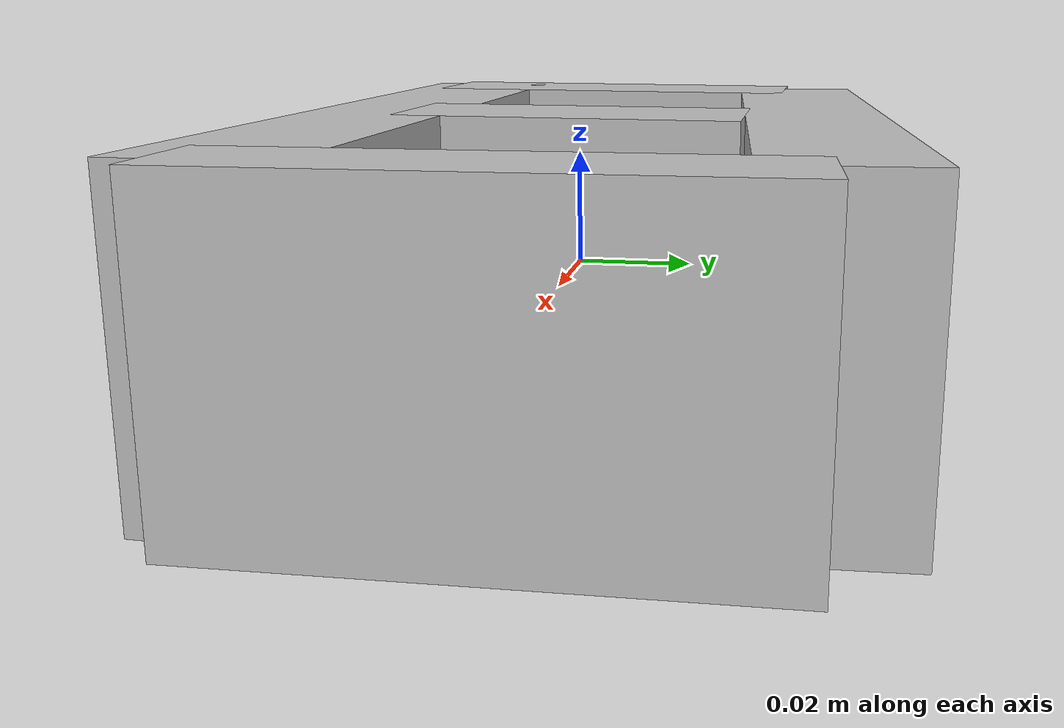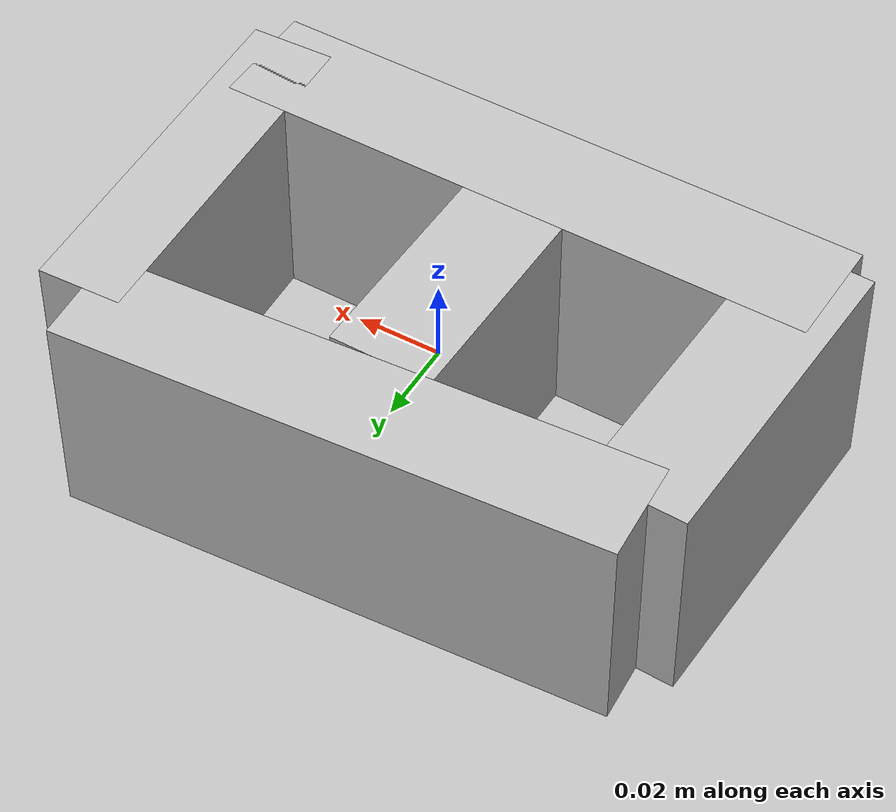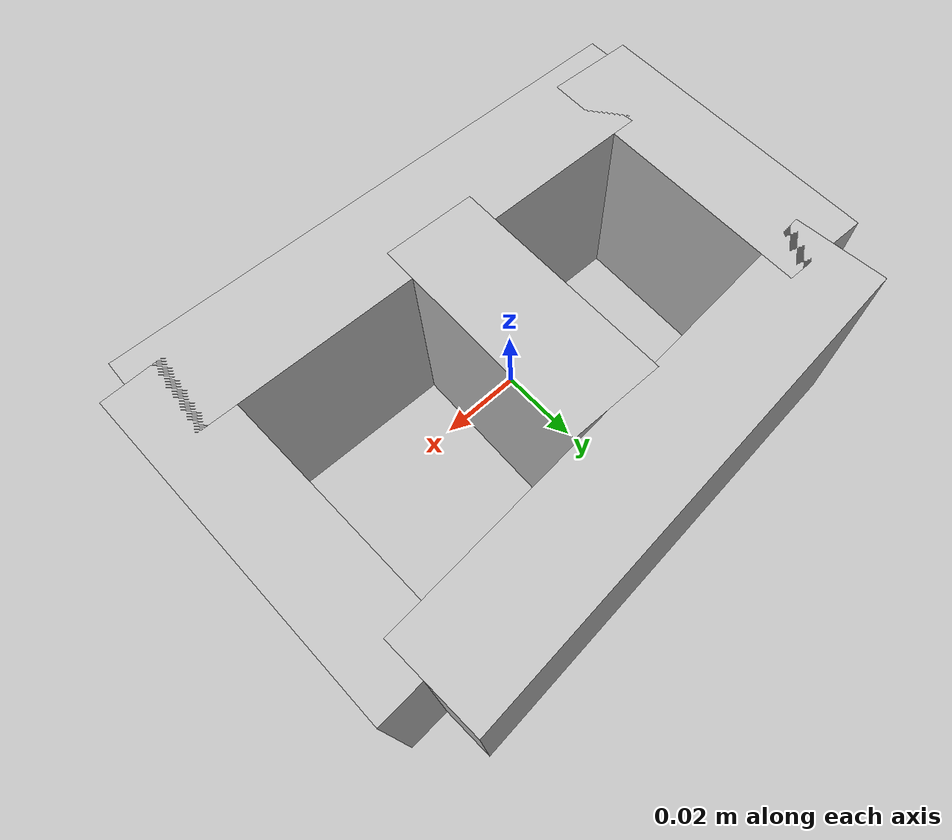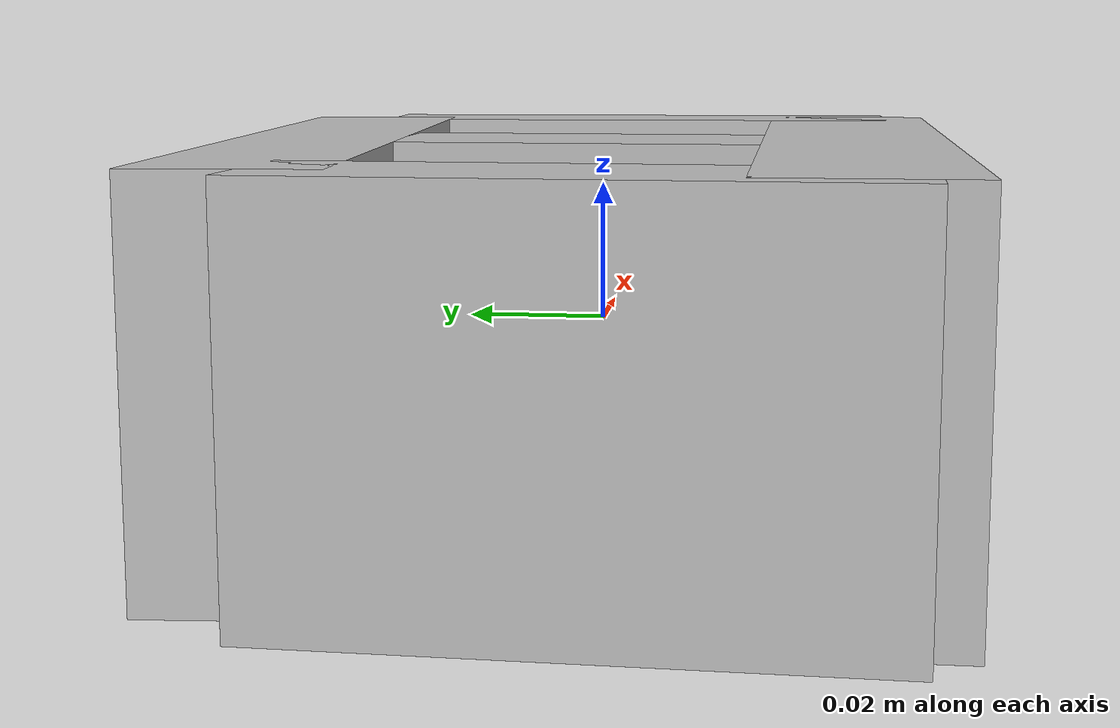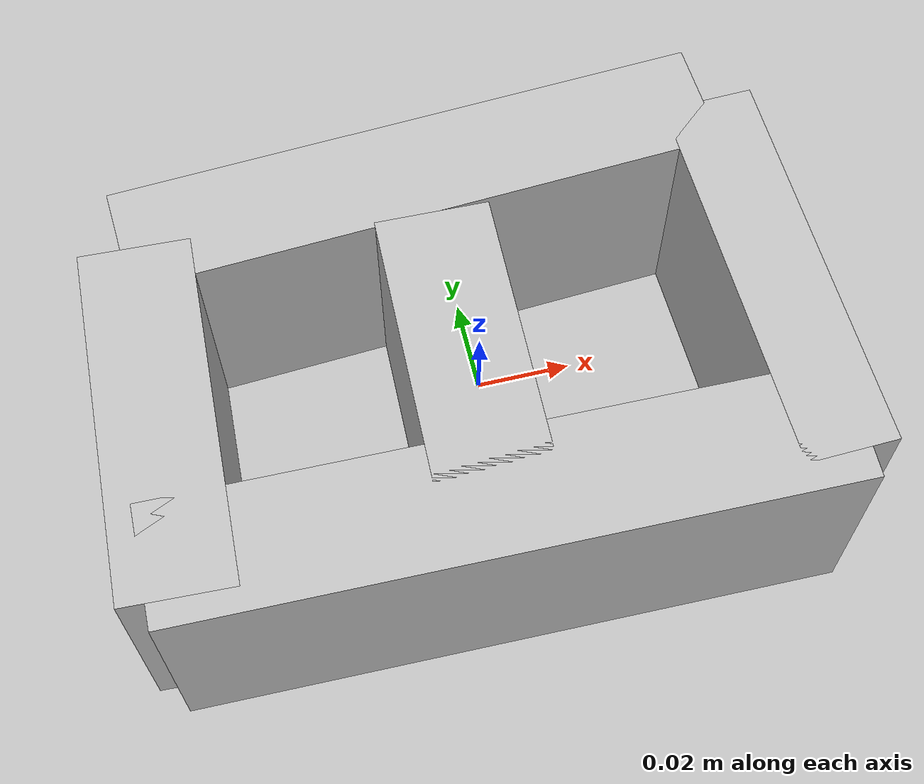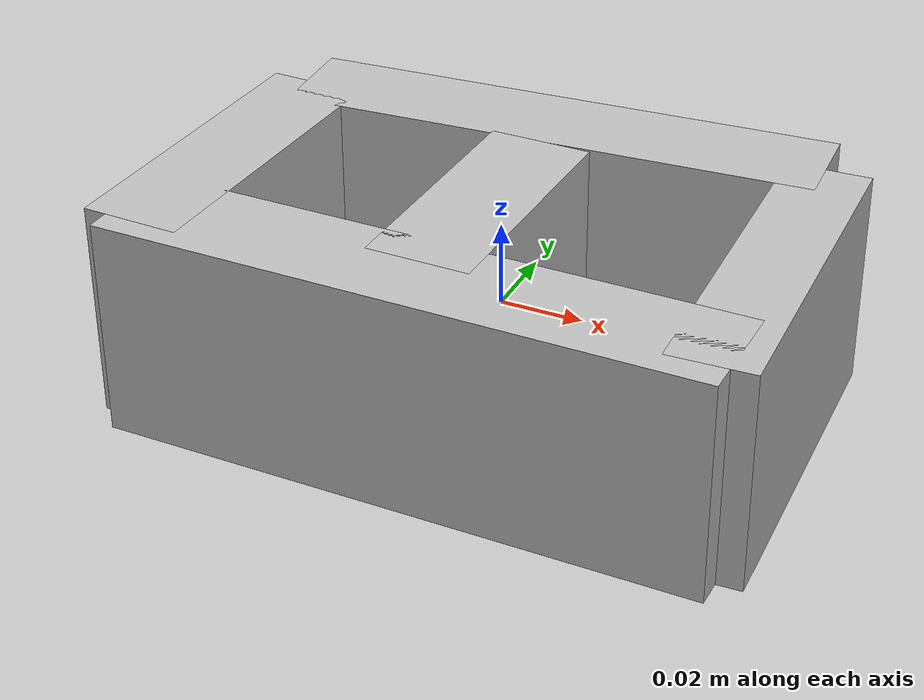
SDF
<?xml version="1.0"?>
<sdf version="1.7">
  <model name="B_shape_video">
    <link name="B_shape_video">
      <inertial>
        <pose>-0.003817 -0.001727 0.000360 0 0 0</pose>
        <mass>0.05</mass>
        <inertia>
          <ixx>6.76069115e-05</ixx>
          <iyy>0.000123463635</iyy>
          <izz>0.000167693399</izz>
          <ixy>-2.18263206e-06</ixy>
          <ixz>6.87079107e-08</ixz>
          <iyz>3.10937595e-08</iyz>
        </inertia>
      </inertial>
      <visual name="box_0">
        <pose>-0.067770 -0.003930 0.000360 0 0 -0.043520</pose>
        <geometry>
          <box><size>0.023820 0.078760 0.052950</size></box>
        </geometry>
        <material>
          <diffuse>0.75 0.75 0.75 1</diffuse>
        </material>
      </visual>
      <collision name="box_0_volume">
        <pose>-0.067770 -0.003930 0.000360 0 0 -0.043520</pose>
        <geometry>
          <box><size>0.023820 0.078760 0.052950</size></box>
        </geometry>
        <drake:proximity_properties>
          <drake:compliant_hydroelastic/>
          <drake:hydroelastic_modulus> 3.0e7 </drake:hydroelastic_modulus>
          <drake:mesh_resolution_hint> 0.02 </drake:mesh_resolution_hint>
          <drake:hunt_crossley_dissipation>10</drake:hunt_crossley_dissipation>
          <drake:mu_dynamic>0.3</drake:mu_dynamic>
        </drake:proximity_properties>
      </collision>
      <visual name="box_1">
        <pose>-0.003950 0.041270 0.000360 0 0 0.058250</pose>
        <geometry>
          <box><size>0.130470 0.024400 0.052950</size></box>
        </geometry>
        <material>
          <diffuse>0.75 0.75 0.75 1</diffuse>
        </material>
      </visual>
      <collision name="box_1_volume">
        <pose>-0.003950 0.041270 0.000360 0 0 0.058250</pose>
        <geometry>
          <box><size>0.130470 0.024400 0.052950</size></box>
        </geometry>
        <drake:proximity_properties>
          <drake:compliant_hydroelastic/>
          <drake:hydroelastic_modulus> 3.0e7 </drake:hydroelastic_modulus>
          <drake:mesh_resolution_hint> 0.02 </drake:mesh_resolution_hint>
          <drake:hunt_crossley_dissipation>10</drake:hunt_crossley_dissipation>
          <drake:mu_dynamic>0.3</drake:mu_dynamic>
        </drake:proximity_properties>
      </collision>
      <visual name="box_2">
        <pose>-0.004070 -0.001730 0.000360 0 0 -0.023730</pose>
        <geometry>
          <box><size>0.024830 0.061950 0.052950</size></box>
        </geometry>
        <material>
          <diffuse>0.75 0.75 0.75 1</diffuse>
        </material>
      </visual>
      <collision name="box_2_volume">
        <pose>-0.004070 -0.001730 0.000360 0 0 -0.023730</pose>
        <geometry>
          <box><size>0.024830 0.061950 0.052950</size></box>
        </geometry>
        <drake:proximity_properties>
          <drake:compliant_hydroelastic/>
          <drake:hydroelastic_modulus> 3.0e7 </drake:hydroelastic_modulus>
          <drake:mesh_resolution_hint> 0.02 </drake:mesh_resolution_hint>
          <drake:hunt_crossley_dissipation>10</drake:hunt_crossley_dissipation>
          <drake:mu_dynamic>0.3</drake:mu_dynamic>
        </drake:proximity_properties>
      </collision>
      <visual name="box_3">
        <pose>-0.003250 -0.036740 0.000360 0 0 1.553180</pose>
        <geometry>
          <box><size>0.026590 0.144660 0.052950</size></box>
        </geometry>
        <material>
          <diffuse>0.75 0.75 0.75 1</diffuse>
        </material>
      </visual>
      <collision name="box_3_volume">
        <pose>-0.003250 -0.036740 0.000360 0 0 1.553180</pose>
        <geometry>
          <box><size>0.026590 0.144660 0.052950</size></box>
        </geometry>
        <drake:proximity_properties>
          <drake:compliant_hydroelastic/>
          <drake:hydroelastic_modulus> 3.0e7 </drake:hydroelastic_modulus>
          <drake:mesh_resolution_hint> 0.02 </drake:mesh_resolution_hint>
          <drake:hunt_crossley_dissipation>10</drake:hunt_crossley_dissipation>
          <drake:mu_dynamic>0.3</drake:mu_dynamic>
        </drake:proximity_properties>
      </collision>
      <visual name="box_4">
        <pose>0.063580 -0.000630 0.000360 0 0 -3.109390</pose>
        <geometry>
          <box><size>0.019960 0.088170 0.052950</size></box>
        </geometry>
        <material>
          <diffuse>0.75 0.75 0.75 1</diffuse>
        </material>
      </visual>
      <collision name="box_4_volume">
        <pose>0.063580 -0.000630 0.000360 0 0 -3.109390</pose>
        <geometry>
          <box><size>0.019960 0.088170 0.052950</size></box>
        </geometry>
        <drake:proximity_properties>
          <drake:compliant_hydroelastic/>
          <drake:hydroelastic_modulus> 3.0e7 </drake:hydroelastic_modulus>
          <drake:mesh_resolution_hint> 0.02 </drake:mesh_resolution_hint>
          <drake:hunt_crossley_dissipation>10</drake:hunt_crossley_dissipation>
          <drake:mu_dynamic>0.3</drake:mu_dynamic>
        </drake:proximity_properties>
      </collision>
    </link>
  </model>
</sdf>
